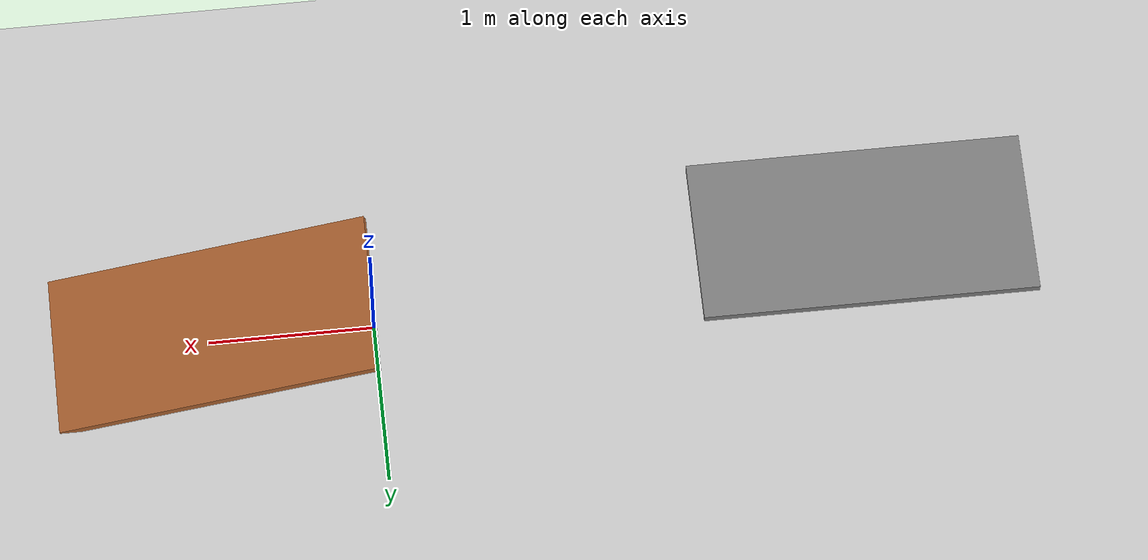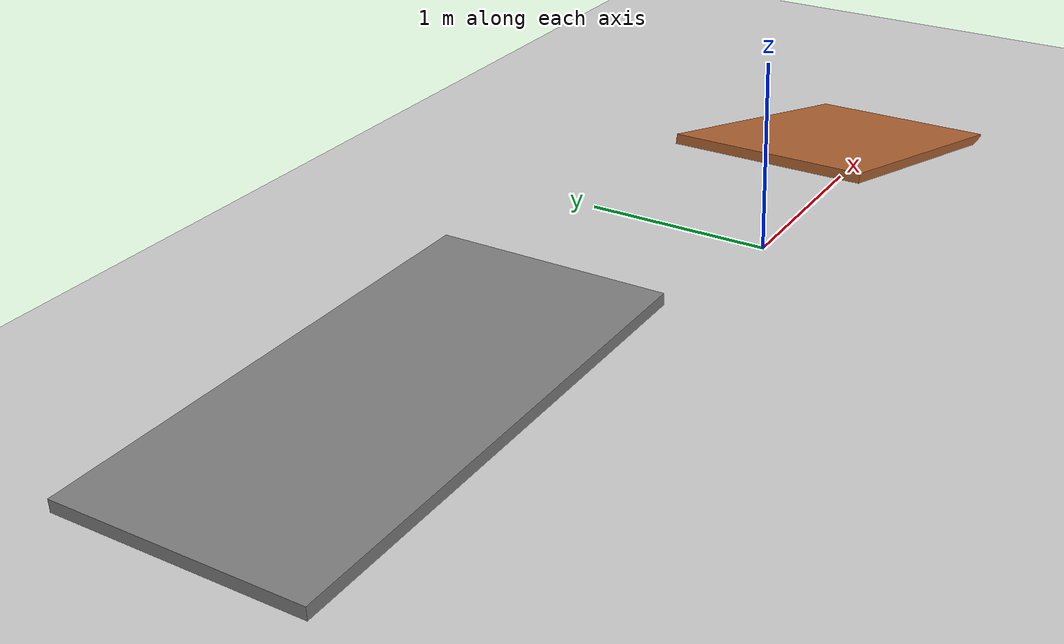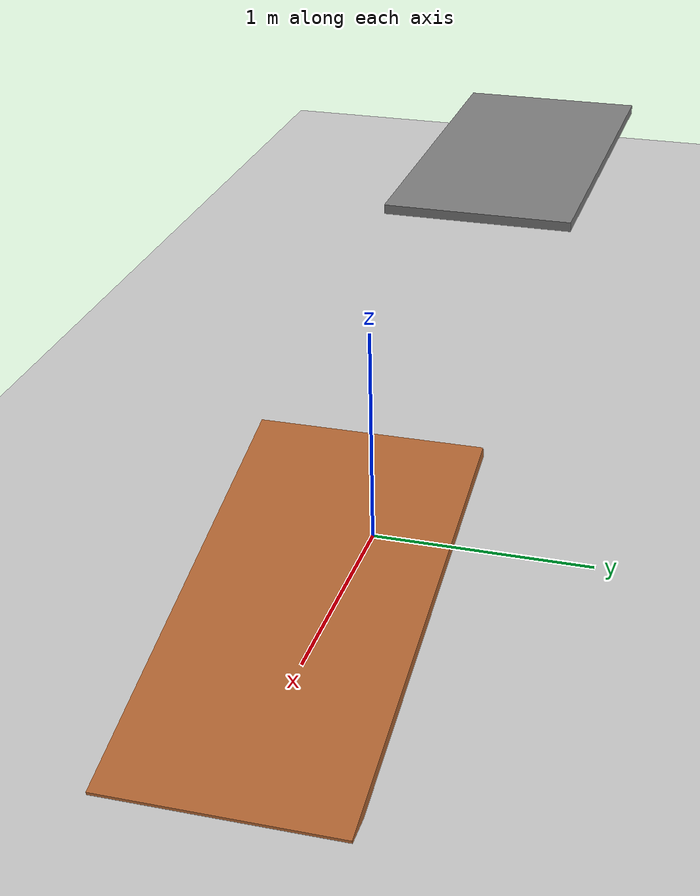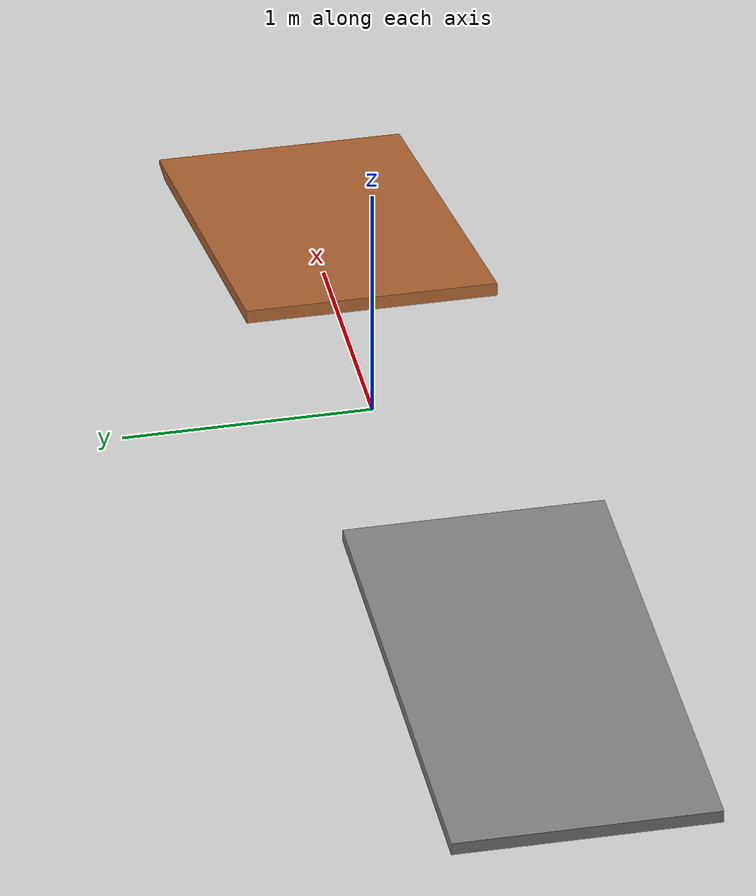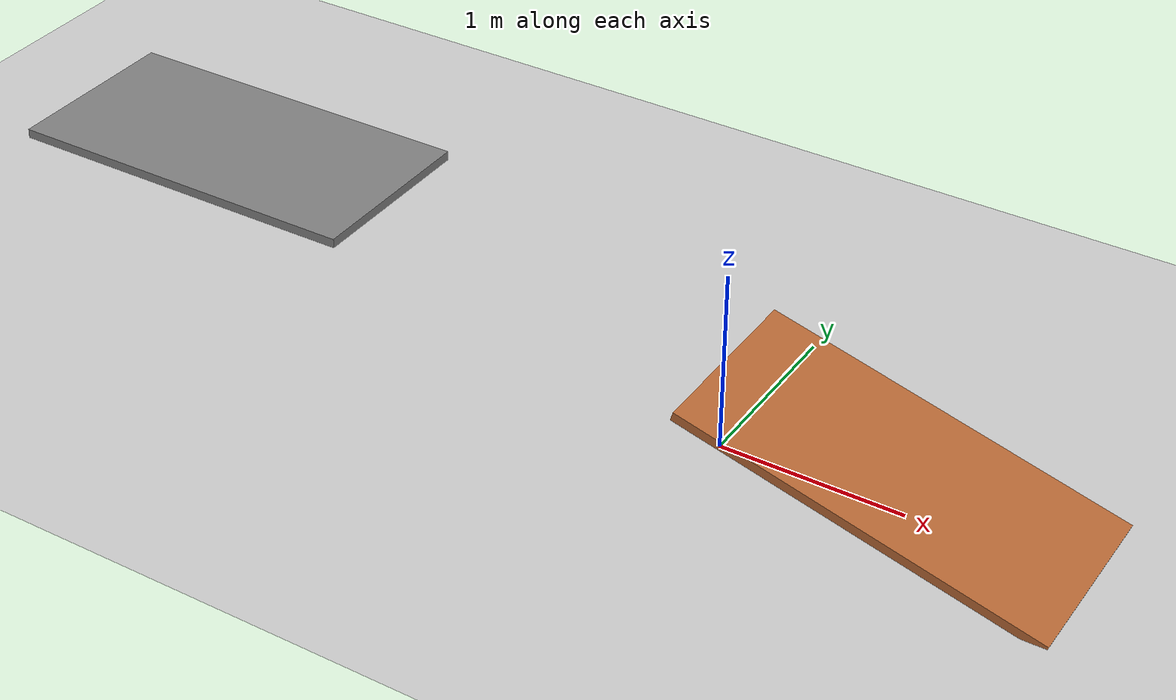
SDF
<sdf version="1.7">
  <world name="default">
    <!-- Ground and sun -->
    <include>
      <uri>model://ground_plane</uri>
    </include>
    <include>
      <uri>model://sun</uri>
    </include>

    <!-- Ramp -->
    <model name="ramp">
      <!-- x y z roll pitch yaw -->
      <pose>0.966 0 0.244 0 0.2618 0</pose>
      <static>true</static>
      <link name="link">
        <collision name="collision">
          <geometry>
            <box>
              <size>2.0 1.0 0.05</size>
            </box>
          </geometry>
        </collision>
        <visual name="visual">
          <geometry>
            <box>
              <size>2.0 1.0 0.05</size>
            </box>
          </geometry>
          <material>
            <ambient>0.7 0.4 0.2 1</ambient>
            <diffuse>0.7 0.4 0.2 1</diffuse>
          </material>
        </visual>
      </link>
    </model>
    <!-- Alleyway connected to ramp -->
<model name="alleyway">
  <pose>-2.932 0 0.786 0 0 0</pose>
  <static>true</static>
  <link name="link">
    <collision name="collision">
      <geometry>
        <box>
          <size>2.0 1.0 0.05</size>
        </box>
      </geometry>
    </collision>
    <visual name="visual">
      <geometry>
        <box>
          <size>2.0 1.0 0.05</size>
        </box>
      </geometry>
      <material>
        <ambient>0.5 0.5 0.5 1</ambient>
        <diffuse>0.5 0.5 0.5 1</diffuse>
      </material>
    </visual>
  </link>
</model>

  </world>
</sdf>
